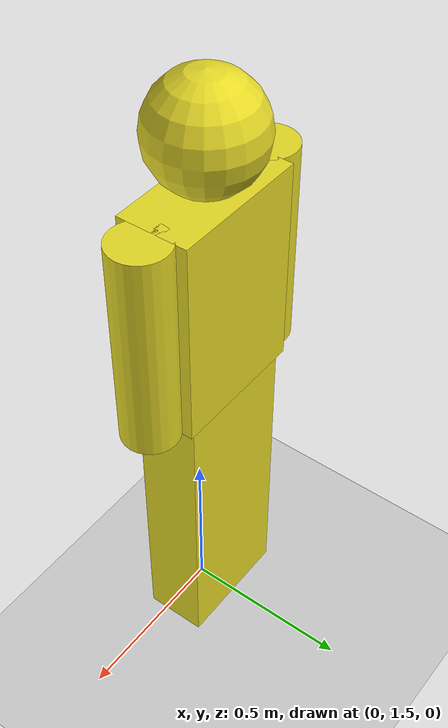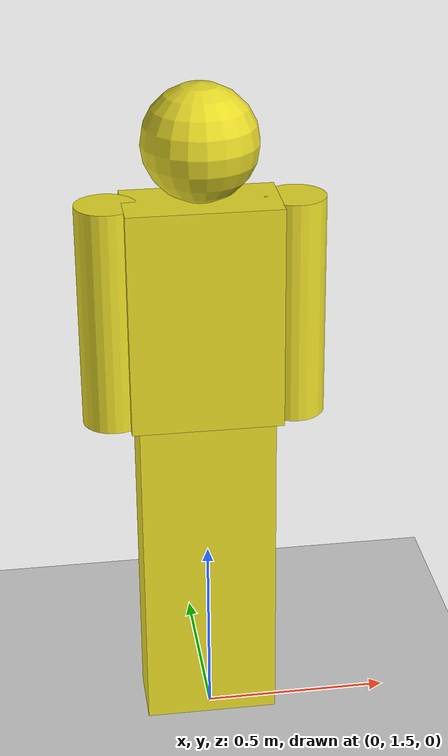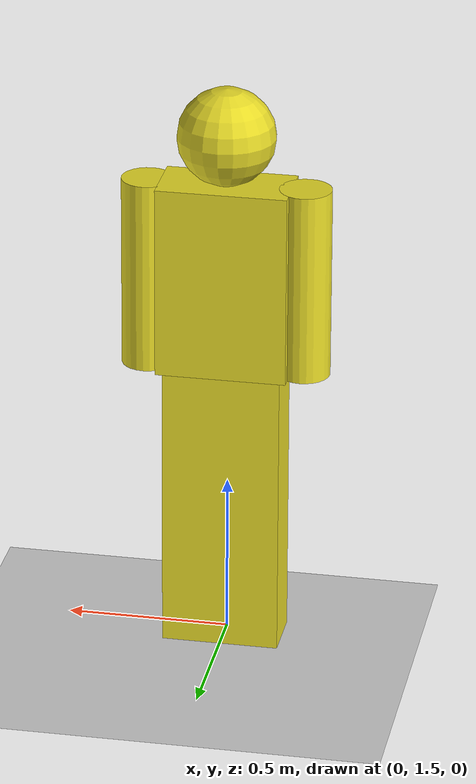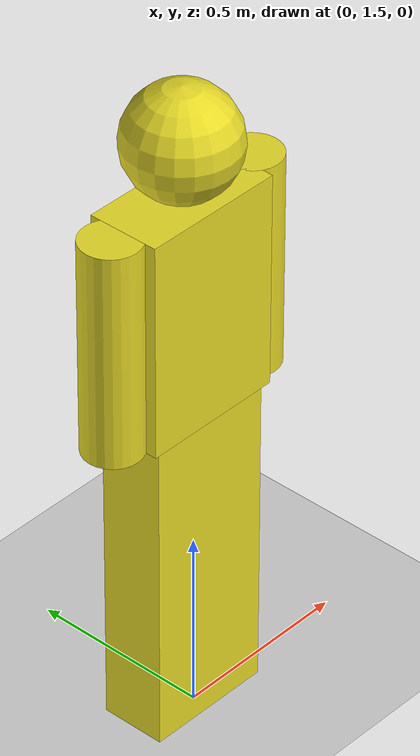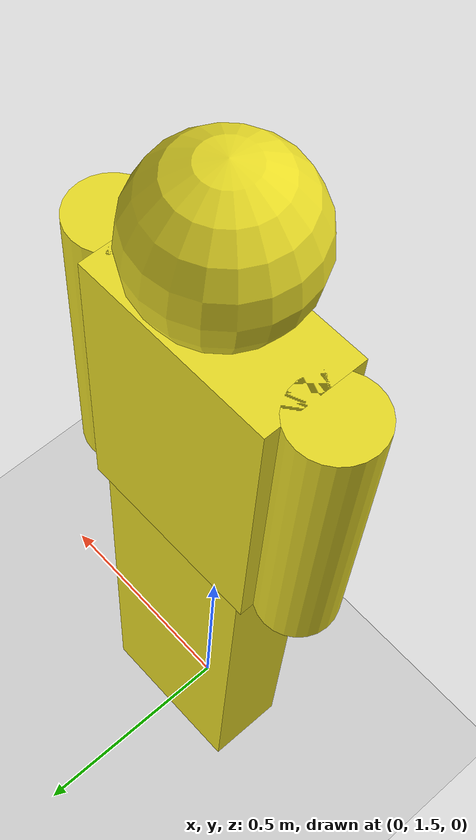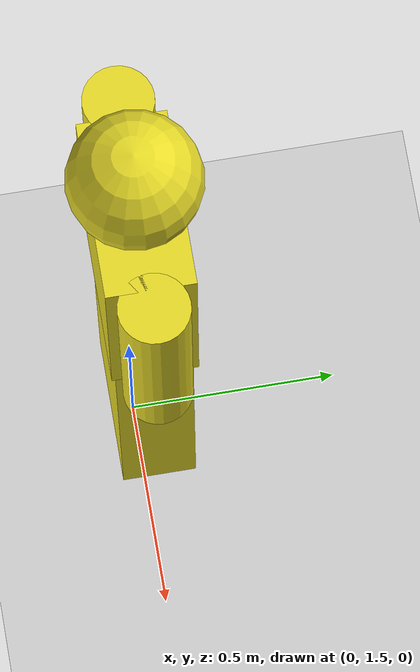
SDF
<sdf version="1.4">
 <world name="default">
  <light name="sun" type="directional">
   <pose>0 0 10 0 -0 0</pose>
   <diffuse>0.8 0.8 0.8 1</diffuse>
   <specular>0.2 0.2 0.2 1</specular>
   <attenuation>
    <range>1000</range>
    <constant>0.9</constant>
    <linear>0.01</linear>
    <quadratic>0.001</quadratic>
   </attenuation>
   <direction>-0.5 0.1 -0.9</direction>
  </light>
  <model name="ground_plane">
   <static>1</static>
   <link name="link">
    <collision name="collision">
     <geometry><plane><normal>0 0 1</normal><size>100 100</size></plane></geometry>
     <surface><friction><ode><mu>100</mu><mu2>50</mu2></ode></friction></surface>
    </collision>
    <visual name="visual">
     <cast_shadows>0</cast_shadows>
     <geometry><plane><normal>0 0 1</normal><size>100 100</size></plane></geometry>
     <material>
      <script><uri>file://media/materials/scripts/gazebo.material</uri><name>Gazebo/Grey</name></script>
     </material>
    </visual>
    <velocity_decay><linear>0</linear><angular>0</angular></velocity_decay>
   </link>
  </model>
  <physics type="ode">
   <max_step_size>0.001</max_step_size>
   <real_time_factor>1</real_time_factor>
   <real_time_update_rate>1000</real_time_update_rate>
   <gravity>0 0 -9.8</gravity>
  </physics>
  <scene><ambient>0.4 0.4 0.4 1</ambient><background>0.7 0.7 0.7 1</background><shadows>1</shadows></scene>
  <spherical_coordinates>
   <surface_model>EARTH_WGS84</surface_model>
   <latitude_deg>0</latitude_deg>
   <longitude_deg>0</longitude_deg>
   <elevation>0</elevation>
   <heading_deg>0</heading_deg>
  </spherical_coordinates>
  <model name="simple_human">
   <static>1</static>
   <link name="body">
    <pose>0 0 1.2 0 -0 0</pose>
    <collision name="collision"><geometry><box><size>0.4 0.2 0.6</size></box></geometry></collision>
    <visual name="visual">
     <geometry><box><size>0.4 0.2 0.6</size></box></geometry>
     <material>
      <script><uri>file://media/materials/scripts/gazebo.material</uri><name>Gazebo/Yellow</name></script>
     </material>
    </visual>
    <velocity_decay><linear>0</linear><angular>0</angular></velocity_decay>
   </link>
   <link name="legs">
    <pose>0 0 0.45 0 -0 0</pose>
    <collision name="collision"><geometry><box><size>0.36 0.18 0.9</size></box></geometry></collision>
    <visual name="visual">
     <geometry><box><size>0.36 0.18 0.9</size></box></geometry>
     <material>
      <script><uri>file://media/materials/scripts/gazebo.material</uri><name>Gazebo/Yellow</name></script>
     </material>
    </visual>
    <velocity_decay><linear>0</linear><angular>0</angular></velocity_decay>
   </link>
   <link name="right_arm">
    <pose>0.24 0 1.2 0 -0 0</pose>
    <collision name="collision">
     <geometry><cylinder><radius>0.08</radius><length>0.6</length></cylinder></geometry>
    </collision>
    <visual name="visual">
     <geometry><cylinder><radius>0.08</radius><length>0.6</length></cylinder></geometry>
     <material>
      <script><uri>file://media/materials/scripts/gazebo.material</uri><name>Gazebo/Yellow</name></script>
     </material>
    </visual>
    <velocity_decay><linear>0</linear><angular>0</angular></velocity_decay>
   </link>
   <link name="left_arm">
    <pose>-0.24 0 1.2 0 -0 0</pose>
    <collision name="collision">
     <geometry><cylinder><radius>0.08</radius><length>0.6</length></cylinder></geometry>
    </collision>
    <visual name="visual">
     <geometry><cylinder><radius>0.08</radius><length>0.6</length></cylinder></geometry>
     <material>
      <script><uri>file://media/materials/scripts/gazebo.material</uri><name>Gazebo/Yellow</name></script>
     </material>
    </visual>
    <velocity_decay><linear>0</linear><angular>0</angular></velocity_decay>
   </link>
   <link name="head">
    <pose>0 0 1.65 0 -0 0</pose>
    <collision name="collision"><geometry><sphere><radius>0.15</radius></sphere></geometry></collision>
    <visual name="visual">
     <geometry><sphere><radius>0.15</radius></sphere></geometry>
     <material>
      <script><uri>file://media/materials/scripts/gazebo.material</uri><name>Gazebo/Yellow</name></script>
     </material>
    </visual>
    <velocity_decay><linear>0</linear><angular>0</angular></velocity_decay>
   </link>
   <pose>0 1.53678 0 0 -0 0</pose>
  </model>
 </world>
</sdf>
